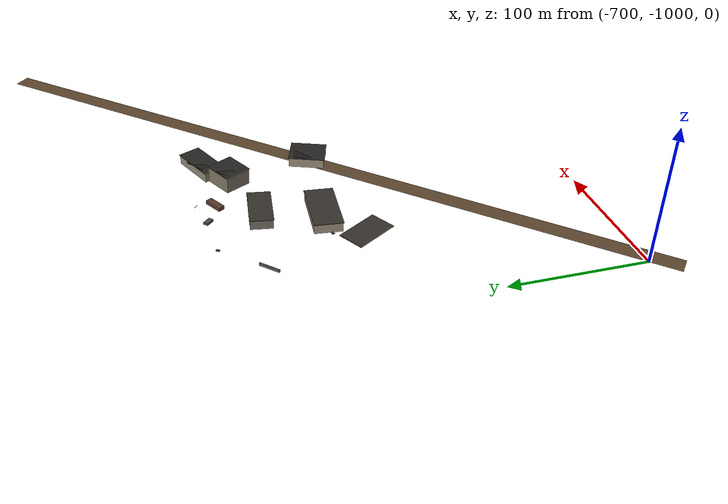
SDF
<sdf version="1.9">
 <world name="uav_5km_world">
  <model name="secondary_rural_road_01_00">
   <static>true</static>
   <pose>-520.00 -815.00 0.04 0 0 -2.3182</pose>
   <link name="link">
    <visual name="visual">
     <geometry><box><size>559.02 13.00 0.06</size></box></geometry>
     <material>
      <ambient>0.38 0.29 0.19 1</ambient>
      <diffuse>0.38 0.29 0.19 1</diffuse>
      <specular>0.08 0.08 0.08 1</specular>
     </material>
    </visual>
   </link>
  </model>
  <model name="damaged_abandoned_building_00">
   <static>true</static>
   <pose>-595.1 -810.0 3.5 0 0 -0.098</pose>
   <link name="link">
    <collision name="collision"><geometry><box><size>42.0 20.0 7.0</size></box></geometry></collision>
    <visual name="visual">
     <geometry><box><size>42.0 20.0 7.0</size></box></geometry>
     <material>
      <ambient>0.56 0.52 0.45 1</ambient>
      <diffuse>0.56 0.52 0.45 1</diffuse>
      <specular>0.08 0.08 0.08 1</specular>
     </material>
    </visual>
   </link>
  </model>
  <model name="damaged_abandoned_building_00_roof">
   <static>true</static>
   <pose>-595.1 -810.0 7.2 0 0 -0.098</pose>
   <link name="link">
    <visual name="visual">
     <geometry><box><size>43.0 21.0 0.5</size></box></geometry>
     <material>
      <ambient>0.22 0.20 0.18 1</ambient>
      <diffuse>0.22 0.20 0.18 1</diffuse>
      <specular>0.08 0.08 0.08 1</specular>
     </material>
    </visual>
   </link>
  </model>
  <model name="damaged_abandoned_building_06_roof">
   <static>true</static>
   <pose>-632.7 -829.3 9.2 0 0 0.541</pose>
   <link name="link">
    <visual name="visual">
     <geometry><box><size>19.0 33.0 0.5</size></box></geometry>
     <material>
      <ambient>0.22 0.20 0.18 1</ambient>
      <diffuse>0.22 0.20 0.18 1</diffuse>
      <specular>0.08 0.08 0.08 1</specular>
     </material>
    </visual>
   </link>
  </model>
  <model name="damaged_abandoned_building_09">
   <static>true</static>
   <pose>-583.7 -767.6 3.5 0 0 -0.154</pose>
   <link name="link">
    <collision name="collision"><geometry><box><size>34.0 16.0 7.0</size></box></geometry></collision>
    <visual name="visual">
     <geometry><box><size>34.0 16.0 7.0</size></box></geometry>
     <material>
      <ambient>0.42 0.40 0.36 1</ambient>
      <diffuse>0.42 0.40 0.36 1</diffuse>
      <specular>0.08 0.08 0.08 1</specular>
     </material>
    </visual>
   </link>
  </model>
  <model name="damaged_abandoned_building_09_roof">
   <static>true</static>
   <pose>-583.7 -767.6 7.2 0 0 -0.154</pose>
   <link name="link">
    <visual name="visual">
     <geometry><box><size>35.0 17.0 0.5</size></box></geometry>
     <material>
      <ambient>0.22 0.20 0.18 1</ambient>
      <diffuse>0.22 0.20 0.18 1</diffuse>
      <specular>0.08 0.08 0.08 1</specular>
     </material>
    </visual>
   </link>
  </model>
  <model name="damaged_abandoned_building_10_collapsed_wall">
   <static>true</static>
   <pose>-644.1 -760.2 1.0 0 0 0.796</pose>
   <link name="link">
    <visual name="visual">
     <geometry><box><size>15.4 1.0 2.0</size></box></geometry>
     <material>
      <ambient>0.36 0.34 0.31 1</ambient>
      <diffuse>0.36 0.34 0.31 1</diffuse>
      <specular>0.08 0.08 0.08 1</specular>
     </material>
    </visual>
   </link>
  </model>
  <model name="damaged_abandoned_building_14">
   <static>true</static>
   <pose>-521.4 -818.3 3.5 0 0 -0.368</pose>
   <link name="link">
    <collision name="collision"><geometry><box><size>22.0 26.0 7.0</size></box></geometry></collision>
    <visual name="visual">
     <geometry><box><size>22.0 26.0 7.0</size></box></geometry>
     <material>
      <ambient>0.56 0.52 0.45 1</ambient>
      <diffuse>0.56 0.52 0.45 1</diffuse>
      <specular>0.08 0.08 0.08 1</specular>
     </material>
    </visual>
   </link>
  </model>
  <model name="damaged_abandoned_building_14_roof">
   <static>true</static>
   <pose>-521.4 -818.3 7.2 0 0 -0.368</pose>
   <link name="link">
    <visual name="visual">
     <geometry><box><size>23.0 27.0 0.3</size></box></geometry>
     <material>
      <ambient>0.16 0.15 0.14 1</ambient>
      <diffuse>0.16 0.15 0.14 1</diffuse>
      <specular>0.08 0.08 0.08 1</specular>
     </material>
    </visual>
   </link>
  </model>
  <model name="damaged_abandoned_building_14_collapsed_wall">
   <static>true</static>
   <pose>-514.4 -824.8 1.0 0 0 -0.068</pose>
   <link name="link">
    <visual name="visual">
     <geometry><box><size>12.1 1.0 2.0</size></box></geometry>
     <material>
      <ambient>0.36 0.34 0.31 1</ambient>
      <diffuse>0.36 0.34 0.31 1</diffuse>
      <specular>0.08 0.08 0.08 1</specular>
     </material>
    </visual>
   </link>
  </model>
  <model name="damaged_abandoned_building_14_broken_roof">
   <static>true</static>
   <pose>-525.4 -813.6 7.5 0.12 0.18 -0.368</pose>
   <link name="link">
    <visual name="visual">
     <geometry><box><size>14.3 13.0 0.35</size></box></geometry>
     <material>
      <ambient>0.14 0.14 0.13 1</ambient>
      <diffuse>0.14 0.14 0.13 1</diffuse>
      <specular>0.08 0.08 0.08 1</specular>
     </material>
    </visual>
   </link>
  </model>
  <model name="damaged_abandoned_building_22">
   <static>true</static>
   <pose>-514.3 -738.6 3.5 0 0 0.419</pose>
   <link name="link">
    <collision name="collision"><geometry><box><size>34.0 16.0 7.0</size></box></geometry></collision>
    <visual name="visual">
     <geometry><box><size>34.0 16.0 7.0</size></box></geometry>
     <material>
      <ambient>0.56 0.52 0.45 1</ambient>
      <diffuse>0.56 0.52 0.45 1</diffuse>
      <specular>0.08 0.08 0.08 1</specular>
     </material>
    </visual>
   </link>
  </model>
  <model name="damaged_abandoned_building_22_roof">
   <static>true</static>
   <pose>-514.3 -738.6 7.2 0 0 0.419</pose>
   <link name="link">
    <visual name="visual">
     <geometry><box><size>35.0 17.0 0.3</size></box></geometry>
     <material>
      <ambient>0.16 0.15 0.14 1</ambient>
      <diffuse>0.16 0.15 0.14 1</diffuse>
      <specular>0.08 0.08 0.08 1</specular>
     </material>
    </visual>
   </link>
  </model>
  <model name="damaged_abandoned_building_22_collapsed_wall">
   <static>true</static>
   <pose>-503.4 -742.6 1.0 0 0 0.719</pose>
   <link name="link">
    <visual name="visual">
     <geometry><box><size>18.7 1.0 2.0</size></box></geometry>
     <material>
      <ambient>0.36 0.34 0.31 1</ambient>
      <diffuse>0.36 0.34 0.31 1</diffuse>
      <specular>0.08 0.08 0.08 1</specular>
     </material>
    </visual>
   </link>
  </model>
  <model name="damaged_abandoned_building_22_broken_roof">
   <static>true</static>
   <pose>-520.4 -735.8 7.5 0.12 0.18 0.419</pose>
   <link name="link">
    <visual name="visual">
     <geometry><box><size>22.1 8.0 0.35</size></box></geometry>
     <material>
      <ambient>0.14 0.14 0.13 1</ambient>
      <diffuse>0.14 0.14 0.13 1</diffuse>
      <specular>0.08 0.08 0.08 1</specular>
     </material>
    </visual>
   </link>
  </model>
  <model name="damaged_abandoned_building_25">
   <static>true</static>
   <pose>-536.9 -754.7 6.0 0 0 0.481</pose>
   <link name="link">
    <collision name="collision"><geometry><box><size>22.0 20.0 12.0</size></box></geometry></collision>
    <visual name="visual">
     <geometry><box><size>22.0 20.0 12.0</size></box></geometry>
     <material>
      <ambient>0.50 0.46 0.39 1</ambient>
      <diffuse>0.50 0.46 0.39 1</diffuse>
      <specular>0.08 0.08 0.08 1</specular>
     </material>
    </visual>
   </link>
  </model>
  <model name="damaged_abandoned_building_25_roof">
   <static>true</static>
   <pose>-536.9 -754.7 12.2 0 0 0.481</pose>
   <link name="link">
    <visual name="visual">
     <geometry><box><size>23.0 21.0 0.3</size></box></geometry>
     <material>
      <ambient>0.16 0.15 0.14 1</ambient>
      <diffuse>0.16 0.15 0.14 1</diffuse>
      <specular>0.08 0.08 0.08 1</specular>
     </material>
    </visual>
   </link>
  </model>
  <model name="damaged_abandoned_building_25_collapsed_wall">
   <static>true</static>
   <pose>-529.9 -759.7 1.0 0 0 0.781</pose>
   <link name="link">
    <visual name="visual">
     <geometry><box><size>12.1 1.0 2.0</size></box></geometry>
     <material>
      <ambient>0.36 0.34 0.31 1</ambient>
      <diffuse>0.36 0.34 0.31 1</diffuse>
      <specular>0.08 0.08 0.08 1</specular>
     </material>
    </visual>
   </link>
  </model>
  <model name="damaged_abandoned_building_25_broken_roof">
   <static>true</static>
   <pose>-540.9 -751.1 12.4 0.12 0.18 0.481</pose>
   <link name="link">
    <visual name="visual">
     <geometry><box><size>14.3 10.0 0.35</size></box></geometry>
     <material>
      <ambient>0.14 0.14 0.13 1</ambient>
      <diffuse>0.14 0.14 0.13 1</diffuse>
      <specular>0.08 0.08 0.08 1</specular>
     </material>
    </visual>
   </link>
  </model>
  <model name="damaged_zone_rubble_pile_05">
   <static>true</static>
   <pose>-573.1 -811.1 0.82 0.14 0.07 0.859</pose>
   <link name="link">
    <visual name="visual">
     <geometry><box><size>5.8 3.8 1.6</size></box></geometry>
     <material>
      <ambient>0.31 0.30 0.28 1</ambient>
      <diffuse>0.31 0.30 0.28 1</diffuse>
      <specular>0.08 0.08 0.08 1</specular>
     </material>
    </visual>
   </link>
  </model>
  <model name="damaged_zone_rubble_pile_06">
   <static>true</static>
   <pose>-617.1 -731.6 0.33 0.14 0.07 0.876</pose>
   <link name="link">
    <visual name="visual">
     <geometry><box><size>2.4 1.6 0.7</size></box></geometry>
     <material>
      <ambient>0.31 0.30 0.28 1</ambient>
      <diffuse>0.31 0.30 0.28 1</diffuse>
      <specular>0.08 0.08 0.08 1</specular>
     </material>
    </visual>
   </link>
  </model>
  <model name="damaged_zone_rubble_pile_14">
   <static>true</static>
   <pose>-617.6 -810.4 0.36 0.14 0.07 0.284</pose>
   <link name="link">
    <visual name="visual">
     <geometry><box><size>2.5 1.7 0.7</size></box></geometry>
     <material>
      <ambient>0.31 0.30 0.28 1</ambient>
      <diffuse>0.31 0.30 0.28 1</diffuse>
      <specular>0.08 0.08 0.08 1</specular>
     </material>
    </visual>
   </link>
  </model>
  <model name="damaged_zone_rubble_pile_18">
   <static>true</static>
   <pose>-584.0 -731.0 0.84 0.14 0.07 2.261</pose>
   <link name="link">
    <visual name="visual">
     <geometry><box><size>6.0 3.9 1.7</size></box></geometry>
     <material>
      <ambient>0.31 0.30 0.28 1</ambient>
      <diffuse>0.31 0.30 0.28 1</diffuse>
      <specular>0.08 0.08 0.08 1</specular>
     </material>
    </visual>
   </link>
  </model>
  <model name="damaged_zone_storage_container_06">
   <static>true</static>
   <pose>-565.4 -739.2 1.3 0 0 0.53</pose>
   <link name="link">
    <collision name="collision"><geometry><box><size>14 5 2.6</size></box></geometry></collision>
    <visual name="visual">
     <geometry><box><size>14 5 2.6</size></box></geometry>
     <material>
      <ambient>0.35 0.24 0.17 1</ambient>
      <diffuse>0.35 0.24 0.17 1</diffuse>
      <specular>0.08 0.08 0.08 1</specular>
     </material>
    </visual>
   </link>
  </model>
  <model name="damaged_zone_broken_streetlight_01">
   <static>true</static>
   <pose>-567.5 -724.5 2.7 0.8 0.1 0.01</pose>
   <link name="link">
    <visual name="visual">
     <geometry><cylinder><radius>0.08</radius><length>5.4</length></cylinder></geometry>
     <material>
      <ambient>0.10 0.10 0.10 1</ambient>
      <diffuse>0.10 0.10 0.10 1</diffuse>
      <specular>0.08 0.08 0.08 1</specular>
     </material>
    </visual>
   </link>
  </model>
 </world>
</sdf>
